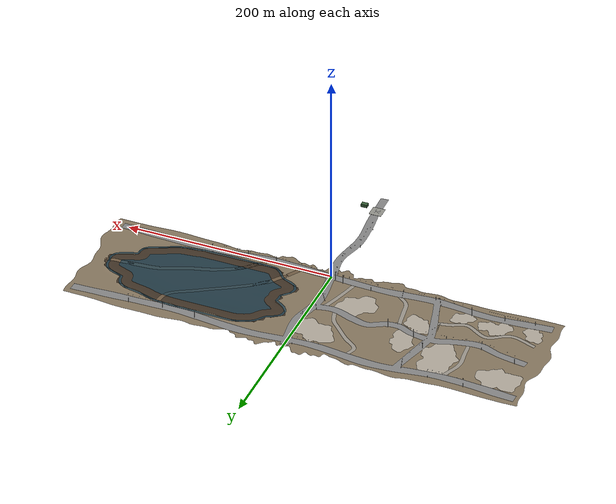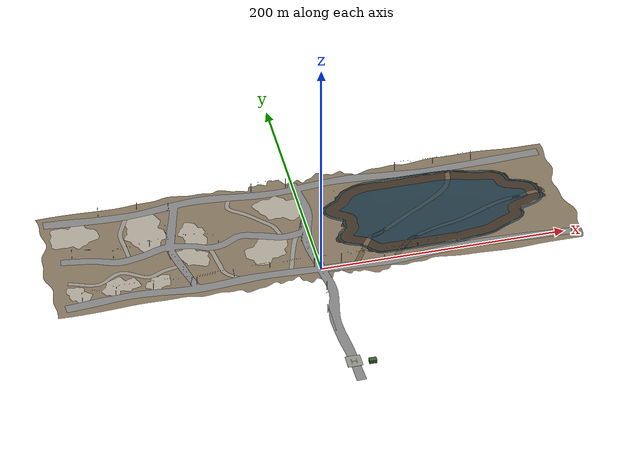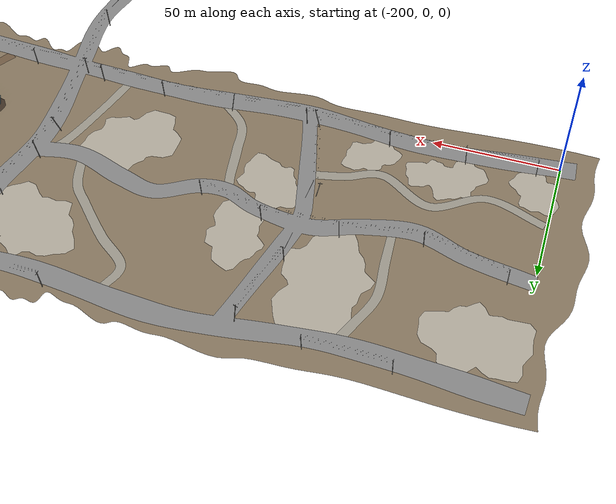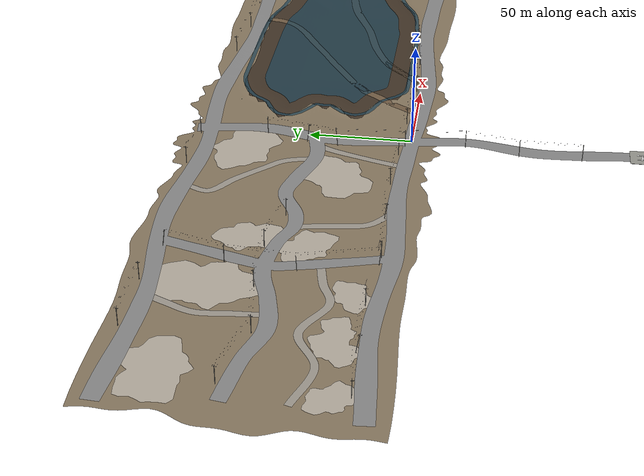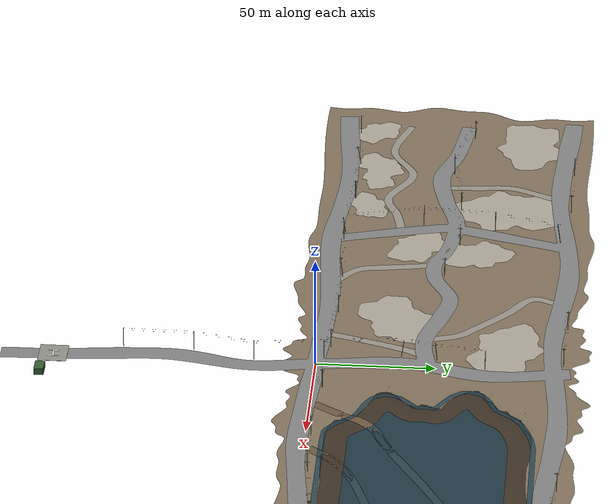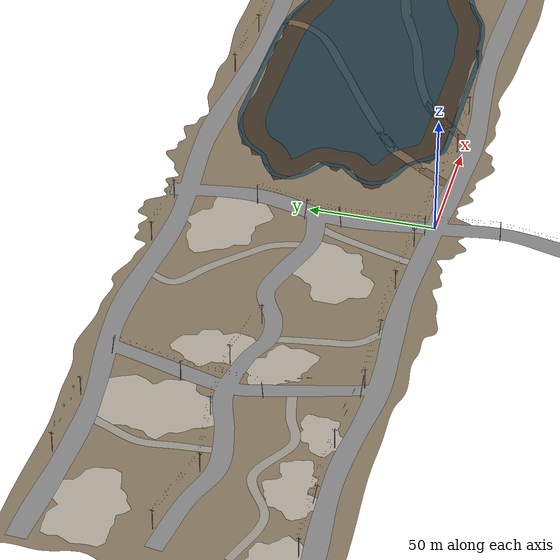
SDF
<sdf version="1.9">
 <world name="aero_sense_disaster">
  <physics name="1ms" type="ignore">
   <max_step_size>0.001</max_step_size>
   <real_time_factor>1.0</real_time_factor>
  </physics>
  <plugin filename="gz-sim-physics-system" name="gz::sim::systems::Physics"/>
  <plugin filename="gz-sim-sensors-system" name="gz::sim::systems::Sensors">
   <render_engine>ogre2</render_engine>
  </plugin>
  <plugin filename="gz-sim-user-commands-system" name="gz::sim::systems::UserCommands"/>
  <plugin filename="gz-sim-scene-broadcaster-system" name="gz::sim::systems::SceneBroadcaster"/>
  <plugin filename="gz-sim-imu-system" name="gz::sim::systems::Imu"/>
  <plugin filename="gz-sim-navsat-system" name="gz::sim::systems::NavSat"/>
  <plugin filename="gz-sim-air-pressure-system" name="gz::sim::systems::AirPressure"/>
  <scene><ambient>0.7 0.7 0.7</ambient><background>0.7 0.75 0.8</background></scene>
  <atmosphere type="adiabatic"><temperature>293</temperature></atmosphere>
  <spherical_coordinates>
   <latitude_deg>-35.363262</latitude_deg>
   <longitude_deg>149.165237</longitude_deg>
   <elevation>584</elevation>
   <heading_deg>0</heading_deg>
   <surface_model>EARTH_WGS84</surface_model>
  </spherical_coordinates>
  <light type="directional" name="sun">
   <pose>0 0 100 0 0 0</pose>
   <diffuse>0.9 0.9 0.85 1</diffuse>
   <specular>0.3 0.3 0.3 1</specular>
   <direction>-0.4 0.2 -0.9</direction>
  </light>
  <frame name="drone_spawn"><pose>0 -110 0.1 0 0 1.5708</pose></frame>
  <include><name>ground</name><pose>0 -20 0 0 0 0</pose><uri>model://aero_sense_ground</uri></include>
  <include><name>roads</name><uri>model://aero_sense_roads</uri></include>
  <include><name>surroundings</name><uri>model://aero_sense_surroundings</uri></include>
  <model name="command_base">
   <static>true</static>
   <pose>0 -110 0 0 0 0</pose>
   <link name="link">
    <collision name="pad_collision">
     <pose>0 0 0.05 0 0 0</pose>
     <geometry><box><size>12 12 0.1</size></box></geometry>
    </collision>
    <visual name="pad">
     <pose>0 0 0.05 0 0 0</pose>
     <geometry><box><size>12 12 0.1</size></box></geometry>
     <material><ambient>0.55 0.55 0.52 1</ambient><diffuse>0.55 0.55 0.52 1</diffuse></material>
     <plugin filename="gz-sim-thermal-system" name="gz::sim::systems::Thermal">
      <temperature>300</temperature>
     </plugin>
    </visual>
    <visual name="h_left">
     <pose>-2 0 0.101 0 0 0</pose>
     <geometry><box><size>0.6 5 0.002</size></box></geometry>
     <material><ambient>1 1 1 1</ambient><diffuse>1 1 1 1</diffuse></material>
    </visual>
    <visual name="h_right">
     <pose>2 0 0.101 0 0 0</pose>
     <geometry><box><size>0.6 5 0.002</size></box></geometry>
     <material><ambient>1 1 1 1</ambient><diffuse>1 1 1 1</diffuse></material>
    </visual>
    <visual name="h_bar">
     <pose>0 0 0.101 0 0 0</pose>
     <geometry><box><size>4 0.6 0.002</size></box></geometry>
     <material><ambient>1 1 1 1</ambient><diffuse>1 1 1 1</diffuse></material>
    </visual>
    <collision name="tent_collision">
     <pose>14 -4 1.5 0 0 0</pose>
     <geometry><box><size>6 4 3</size></box></geometry>
    </collision>
    <visual name="tent">
     <pose>14 -4 1.5 0 0 0</pose>
     <geometry><box><size>6 4 3</size></box></geometry>
     <material><ambient>0.2 0.35 0.2 1</ambient><diffuse>0.2 0.35 0.2 1</diffuse></material>
    </visual>
   </link>
  </model>
  <include>
   <name>pole_1</name>
   <pose>-7.32 -81.24 0.00 0.000 0.000 1.662</pose>
   <uri>model://aero_sense_electric_pole</uri>
  </include>
  <include>
   <name>pole_2</name>
   <pose>-6.98 -51.59 0.00 0.000 0.000 1.386</pose>
   <uri>model://aero_sense_electric_pole</uri>
  </include>
  <include>
   <name>pole_3</name>
   <pose>-1.52 -25.86 0.00 0.000 0.000 1.560</pose>
   <uri>model://aero_sense_electric_pole</uri>
  </include>
  <include>
   <name>pole_4</name>
   <pose>-4.92 3.00 0.00 0.000 0.000 1.680</pose>
   <uri>model://aero_sense_electric_pole</uri>
  </include>
  <include>
   <name>pole_5</name>
   <pose>-8.28 35.26 0.00 0.173 0.133 1.556</pose>
   <uri>model://aero_sense_electric_pole</uri>
  </include>
  <include>
   <name>pole_6</name>
   <pose>-1.21 70.55 0.00 0.000 0.000 1.476</pose>
   <uri>model://aero_sense_electric_pole</uri>
  </include>
  <include>
   <name>pole_7</name>
   <pose>-191.58 5.36 0.00 0.000 0.000 0.092</pose>
   <uri>model://aero_sense_electric_pole</uri>
  </include>
  <include>
   <name>pole_8</name>
   <pose>-164.59 7.18 0.00 0.167 0.038 0.061</pose>
   <uri>model://aero_sense_electric_pole</uri>
  </include>
  <include>
   <name>pole_9</name>
   <pose>-134.40 6.90 0.00 0.000 0.000 -0.096</pose>
   <uri>model://aero_sense_electric_pole</uri>
  </include>
  <include>
   <name>pole_10</name>
   <pose>-99.95 4.21 0.00 0.000 0.000 -0.010</pose>
   <uri>model://aero_sense_electric_pole</uri>
  </include>
  <include>
   <name>pole_11</name>
   <pose>-69.08 6.12 0.00 0.104 -0.154 0.086</pose>
   <uri>model://aero_sense_electric_pole</uri>
  </include>
  <include>
   <name>pole_12</name>
   <pose>-40.25 6.53 0.00 0.000 0.000 -0.021</pose>
   <uri>model://aero_sense_electric_pole</uri>
  </include>
  <include>
   <name>pole_13</name>
   <pose>-13.19 5.36 0.00 0.000 0.000 -0.056</pose>
   <uri>model://aero_sense_electric_pole</uri>
  </include>
  <include>
   <name>pole_14</name>
   <pose>17.34 4.12 0.00 0.000 0.000 -0.072</pose>
   <uri>model://aero_sense_electric_pole</uri>
  </include>
  <include>
   <name>pole_15</name>
   <pose>52.14 2.23 0.00 0.000 0.000 -0.016</pose>
   <uri>model://aero_sense_electric_pole</uri>
  </include>
  <include>
   <name>pole_16</name>
   <pose>79.12 3.00 0.03 0.000 0.000 0.115</pose>
   <uri>model://aero_sense_electric_pole</uri>
  </include>
  <include>
   <name>pole_17</name>
   <pose>112.85 6.36 0.36 0.000 0.000 0.046</pose>
   <uri>model://aero_sense_electric_pole</uri>
  </include>
  <include>
   <name>pole_18</name>
   <pose>-160.93 102.50 0.00 0.000 0.000 -0.060</pose>
   <uri>model://aero_sense_electric_pole</uri>
  </include>
  <include>
   <name>pole_19</name>
   <pose>-129.22 102.08 0.00 0.000 0.000 0.091</pose>
   <uri>model://aero_sense_electric_pole</uri>
  </include>
  <include>
   <name>pole_20</name>
   <pose>-34.27 103.84 0.00 0.000 0.000 -0.097</pose>
   <uri>model://aero_sense_electric_pole</uri>
  </include>
  <include>
   <name>pole_21</name>
   <pose>-5.82 103.05 0.00 0.000 0.000 0.077</pose>
   <uri>model://aero_sense_electric_pole</uri>
  </include>
  <include>
   <name>pole_22</name>
   <pose>85.49 103.35 0.00 0.000 0.000 -0.089</pose>
   <uri>model://aero_sense_electric_pole</uri>
  </include>
  <include>
   <name>pole_23</name>
   <pose>117.00 101.56 0.00 0.000 0.000 0.003</pose>
   <uri>model://aero_sense_electric_pole</uri>
  </include>
  <include>
   <name>pole_24</name>
   <pose>149.58 102.57 0.00 0.000 0.000 0.037</pose>
   <uri>model://aero_sense_electric_pole</uri>
  </include>
  <include>
   <name>pole_25</name>
   <pose>-190.54 56.98 0.00 0.000 0.000 -0.141</pose>
   <uri>model://aero_sense_electric_pole</uri>
  </include>
  <include>
   <name>pole_26</name>
   <pose>-158.42 49.32 0.00 0.000 0.000 -0.269</pose>
   <uri>model://aero_sense_electric_pole</uri>
  </include>
  <include>
   <name>pole_27</name>
   <pose>-128.06 53.97 0.00 0.000 0.000 0.355</pose>
   <uri>model://aero_sense_electric_pole</uri>
  </include>
  <include>
   <name>pole_28</name>
   <pose>-98.48 54.93 0.00 0.000 0.000 -0.194</pose>
   <uri>model://aero_sense_electric_pole</uri>
  </include>
  <include>
   <name>pole_29</name>
   <pose>-73.03 49.66 0.00 0.000 0.000 0.240</pose>
   <uri>model://aero_sense_electric_pole</uri>
  </include>
  <include>
   <name>pole_30</name>
   <pose>-6.71 50.34 0.00 0.125 0.145 0.219</pose>
   <uri>model://aero_sense_electric_pole</uri>
  </include>
  <include>
   <name>pole_31</name>
   <pose>-105.25 4.58 0.00 0.173 -0.137 1.847</pose>
   <uri>model://aero_sense_electric_pole</uri>
  </include>
  <include>
   <name>pole_32</name>
   <pose>-114.32 38.24 0.00 -0.207 0.055 1.798</pose>
   <uri>model://aero_sense_electric_pole</uri>
  </include>
  <include>
   <name>pole_33</name>
   <pose>-112.17 69.64 0.00 0.000 0.000 1.304</pose>
   <uri>model://aero_sense_electric_pole</uri>
  </include>
  <include>
   <name>pole_34</name>
   <pose>-103.78 98.27 0.00 -0.037 -0.170 1.300</pose>
   <uri>model://aero_sense_electric_pole</uri>
  </include>
  <include><name>power_lines</name><uri>model://aero_sense_power_lines</uri></include>
  <include><name>flood_water</name><pose>0 0 0.6 0 0 0</pose><uri>model://aero_sense_flood_water</uri></include>
 </world>
</sdf>

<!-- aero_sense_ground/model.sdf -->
<sdf version="1.9">
  <model name="aero_sense_ground">
    <static>true</static>
    <link name="link">
      <collision name="collision">
        <geometry><plane><normal>0 0 1</normal><size>440 360</size></plane></geometry>
      </collision>
      <visual name="visual">
        <pose>0 20 0 0 0 0</pose>
        <cast_shadows>false</cast_shadows>
        <geometry><mesh><uri>model://aero_sense_ground/meshes/ground.obj</uri></mesh></geometry>
        <material>
          <diffuse>1 1 1 1</diffuse>
          <pbr><metal>
            <albedo_map>model://gazebo_models_worlds_collection-master/models/cyberzoo/cyberzoo_floor/grass_green.png</albedo_map>
            <roughness>0.95</roughness><metalness>0</metalness>
          </metal></pbr>
        </material>
        <plugin filename="gz-sim-thermal-system" name="gz::sim::systems::Thermal">
          <temperature>298</temperature>
        </plugin>
      </visual>
      <visual name="earth">
        <pose>0 20 0 0 0 0</pose>
        <cast_shadows>false</cast_shadows>
        <geometry><mesh><uri>model://aero_sense_ground/meshes/earth.obj</uri></mesh></geometry>
        <material>
          <ambient>0.50 0.44 0.35 1</ambient><diffuse>0.50 0.44 0.35 1</diffuse>
          <pbr><metal><roughness>0.95</roughness><metalness>0</metalness></metal></pbr>
        </material>
        <plugin filename="gz-sim-thermal-system" name="gz::sim::systems::Thermal">
          <temperature>298</temperature>
        </plugin>
      </visual>
      <visual name="dust">
        <pose>0 20 0 0 0 0</pose>
        <cast_shadows>false</cast_shadows>
        <geometry><mesh><uri>model://aero_sense_ground/meshes/dust.obj</uri></mesh></geometry>
        <material>
          <ambient>0.66 0.63 0.58 1</ambient><diffuse>0.66 0.63 0.58 1</diffuse>
          <pbr><metal><roughness>0.95</roughness><metalness>0</metalness></metal></pbr>
        </material>
        <plugin filename="gz-sim-thermal-system" name="gz::sim::systems::Thermal">
          <temperature>298</temperature>
        </plugin>
      </visual>
      <visual name="mud">
        <pose>0 20 0 0 0 0</pose>
        <cast_shadows>false</cast_shadows>
        <geometry><mesh><uri>model://aero_sense_ground/meshes/mud.obj</uri></mesh></geometry>
        <material>
          <ambient>0.24 0.19 0.14 1</ambient><diffuse>0.24 0.19 0.14 1</diffuse>
          <pbr><metal><roughness>0.6</roughness><metalness>0</metalness></metal></pbr>
        </material>
        <plugin filename="gz-sim-thermal-system" name="gz::sim::systems::Thermal">
          <temperature>294</temperature>
        </plugin>
      </visual>
    </link>
  </model>
</sdf>

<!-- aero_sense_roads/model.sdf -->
<sdf version="1.9">
  <model name="aero_sense_roads">
    <static>true</static>
    <link name="link">
      <visual name="visual">
        <cast_shadows>false</cast_shadows>
        <geometry><mesh><uri>model://aero_sense_roads/meshes/roads.obj</uri></mesh></geometry>
        <material>
          <diffuse>0.5 0.5 0.5 1</diffuse>
          <pbr><metal>
            <albedo_map>model://darpa_subt_worlds-main/materials/textures/Asphalt01_Albedo.jpg</albedo_map>
            <normal_map>model://darpa_subt_worlds-main/materials/textures/Asphalt01_Normal.jpg</normal_map>
            <roughness_map>model://darpa_subt_worlds-main/materials/textures/Asphalt01_Roughness.jpg</roughness_map>
            <metalness>0</metalness>
          </metal></pbr>
        </material>
        <plugin filename="gz-sim-thermal-system" name="gz::sim::systems::Thermal">
          <temperature>301</temperature>
        </plugin>
      </visual>
      <!-- Concrete galis, 3-4 m wide: sun-warmed like the asphalt, a touch cooler -->
      <visual name="lanes">
        <cast_shadows>false</cast_shadows>
        <geometry><mesh><uri>model://aero_sense_roads/meshes/lanes.obj</uri></mesh></geometry>
        <material>
          <ambient>0.58 0.56 0.52 1</ambient><diffuse>0.58 0.56 0.52 1</diffuse>
          <pbr><metal><roughness>0.9</roughness><metalness>0</metalness></metal></pbr>
        </material>
        <plugin filename="gz-sim-thermal-system" name="gz::sim::systems::Thermal">
          <temperature>300</temperature>
        </plugin>
      </visual>
      <!-- Village dirt tracks, mostly under the flood -->
      <visual name="tracks">
        <cast_shadows>false</cast_shadows>
        <geometry><mesh><uri>model://aero_sense_roads/meshes/tracks.obj</uri></mesh></geometry>
        <material>
          <ambient>0.42 0.34 0.25 1</ambient><diffuse>0.42 0.34 0.25 1</diffuse>
          <pbr><metal><roughness>0.9</roughness><metalness>0</metalness></metal></pbr>
        </material>
        <plugin filename="gz-sim-thermal-system" name="gz::sim::systems::Thermal">
          <temperature>297</temperature>
        </plugin>
      </visual>
    </link>
  </model>
</sdf>

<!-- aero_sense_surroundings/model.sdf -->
<sdf version="1.9">
  <model name="aero_sense_surroundings">
    <static>true</static>
    <link name="link">
      <visual name="fields">
        <pose>0 0 -2.2 0 0 0</pose>
        <cast_shadows>false</cast_shadows>
        <geometry><plane><normal>0 0 1</normal><size>3000 3000</size></plane></geometry>
        <material><ambient>0.33 0.38 0.2 1</ambient><diffuse>0.33 0.38 0.2 1</diffuse></material>
      </visual>
    </link>
  </model>
</sdf>

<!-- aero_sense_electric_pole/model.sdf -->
<sdf version="1.9">
  <model name="aero_sense_electric_pole">
    <static>true</static>
    <link name="link">
      <collision name="collision">
        <pose>0 0 4.5 0 0 0</pose>
        <geometry><box><size>0.22 0.22 9</size></box></geometry>
      </collision>
      <visual name="pole">
        <pose>0 0 4.5 0 0 0</pose>
        <geometry><box><size>0.2 0.22 9</size></box></geometry>
        <material><ambient>0.66 0.65 0.62 1</ambient><diffuse>0.66 0.65 0.62 1</diffuse></material>
      </visual>
      <visual name="cross_arm">
        <pose>0 0 8.5 0 0 0</pose>
        <geometry><box><size>0.08 1.8 0.08</size></box></geometry>
        <material><ambient>0.3 0.3 0.32 1</ambient><diffuse>0.3 0.3 0.32 1</diffuse></material>
      </visual>
      <visual name="insulator_left">
        <pose>0 -0.8 8.64 0 0 0</pose>
        <geometry><cylinder><radius>0.05</radius><length>0.2</length></cylinder></geometry>
        <material><ambient>0.85 0.85 0.82 1</ambient><diffuse>0.85 0.85 0.82 1</diffuse></material>
      </visual>
      <visual name="insulator_middle">
        <pose>0 0 9.1 0 0 0</pose>
        <geometry><cylinder><radius>0.05</radius><length>0.2</length></cylinder></geometry>
        <material><ambient>0.85 0.85 0.82 1</ambient><diffuse>0.85 0.85 0.82 1</diffuse></material>
      </visual>
      <visual name="insulator_right">
        <pose>0 0.8 8.64 0 0 0</pose>
        <geometry><cylinder><radius>0.05</radius><length>0.2</length></cylinder></geometry>
        <material><ambient>0.85 0.85 0.82 1</ambient><diffuse>0.85 0.85 0.82 1</diffuse></material>
      </visual>
    </link>
  </model>
</sdf>

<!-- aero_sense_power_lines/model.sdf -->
<sdf version="1.9">
  <model name="aero_sense_power_lines">
    <static>true</static>
    <link name="link">
      <visual name="span_0_-0.8">
        <pose>-6.349 -66.424 8.640 0 1.57080 1.55957</pose>
        <cast_shadows>false</cast_shadows>
        <geometry><cylinder><radius>0.006</radius><length>29.654</length></cylinder></geometry>
        <material><ambient>0.08 0.08 0.09 1</ambient><diffuse>0.08 0.08 0.09 1</diffuse></material>
      </visual>
      <visual name="span_0_+0.0">
        <pose>-7.149 -66.415 9.100 0 1.57080 1.55957</pose>
        <cast_shadows>false</cast_shadows>
        <geometry><cylinder><radius>0.006</radius><length>29.654</length></cylinder></geometry>
        <material><ambient>0.08 0.08 0.09 1</ambient><diffuse>0.08 0.08 0.09 1</diffuse></material>
      </visual>
      <visual name="span_0_+0.8">
        <pose>-7.949 -66.406 8.640 0 1.57080 1.55957</pose>
        <cast_shadows>false</cast_shadows>
        <geometry><cylinder><radius>0.006</radius><length>29.654</length></cylinder></geometry>
        <material><ambient>0.08 0.08 0.09 1</ambient><diffuse>0.08 0.08 0.09 1</diffuse></material>
      </visual>
      <visual name="span_1_-0.8">
        <pose>-3.471 -38.891 8.640 0 1.57080 1.36176</pose>
        <cast_shadows>false</cast_shadows>
        <geometry><cylinder><radius>0.006</radius><length>26.300</length></cylinder></geometry>
        <material><ambient>0.08 0.08 0.09 1</ambient><diffuse>0.08 0.08 0.09 1</diffuse></material>
      </visual>
      <visual name="span_1_+0.0">
        <pose>-4.254 -38.725 9.100 0 1.57080 1.36176</pose>
        <cast_shadows>false</cast_shadows>
        <geometry><cylinder><radius>0.006</radius><length>26.300</length></cylinder></geometry>
        <material><ambient>0.08 0.08 0.09 1</ambient><diffuse>0.08 0.08 0.09 1</diffuse></material>
      </visual>
      <visual name="span_1_+0.8">
        <pose>-5.036 -38.559 8.640 0 1.57080 1.36176</pose>
        <cast_shadows>false</cast_shadows>
        <geometry><cylinder><radius>0.006</radius><length>26.300</length></cylinder></geometry>
        <material><ambient>0.08 0.08 0.09 1</ambient><diffuse>0.08 0.08 0.09 1</diffuse></material>
      </visual>
      <visual name="span_2_-0.8">
        <pose>-2.429 -11.336 8.640 0 1.57080 1.68797</pose>
        <cast_shadows>false</cast_shadows>
        <geometry><cylinder><radius>0.006</radius><length>29.063</length></cylinder></geometry>
        <material><ambient>0.08 0.08 0.09 1</ambient><diffuse>0.08 0.08 0.09 1</diffuse></material>
      </visual>
      <visual name="span_2_+0.0">
        <pose>-3.224 -11.429 9.100 0 1.57080 1.68797</pose>
        <cast_shadows>false</cast_shadows>
        <geometry><cylinder><radius>0.006</radius><length>29.063</length></cylinder></geometry>
        <material><ambient>0.08 0.08 0.09 1</ambient><diffuse>0.08 0.08 0.09 1</diffuse></material>
      </visual>
      <visual name="span_2_+0.8">
        <pose>-4.018 -11.523 8.640 0 1.57080 1.68797</pose>
        <cast_shadows>false</cast_shadows>
        <geometry><cylinder><radius>0.006</radius><length>29.063</length></cylinder></geometry>
        <material><ambient>0.08 0.08 0.09 1</ambient><diffuse>0.08 0.08 0.09 1</diffuse></material>
      </visual>
      <visual name="span_3_-0.8">
        <pose>-5.804 19.213 8.640 0 1.57080 1.67442</pose>
        <cast_shadows>false</cast_shadows>
        <geometry><cylinder><radius>0.006</radius><length>32.429</length></cylinder></geometry>
        <material><ambient>0.08 0.08 0.09 1</ambient><diffuse>0.08 0.08 0.09 1</diffuse></material>
      </visual>
      <visual name="span_3_+0.0">
        <pose>-6.600 19.130 9.100 0 1.57080 1.67442</pose>
        <cast_shadows>false</cast_shadows>
        <geometry><cylinder><radius>0.006</radius><length>32.429</length></cylinder></geometry>
        <material><ambient>0.08 0.08 0.09 1</ambient><diffuse>0.08 0.08 0.09 1</diffuse></material>
      </visual>
      <visual name="span_3_+0.8">
        <pose>-7.395 19.047 8.640 0 1.57080 1.67442</pose>
        <cast_shadows>false</cast_shadows>
        <geometry><cylinder><radius>0.006</radius><length>32.429</length></cylinder></geometry>
        <material><ambient>0.08 0.08 0.09 1</ambient><diffuse>0.08 0.08 0.09 1</diffuse></material>
      </visual>
      <visual name="span_4_-0.8">
        <pose>-3.960 52.745 8.640 0 1.57080 1.37322</pose>
        <cast_shadows>false</cast_shadows>
        <geometry><cylinder><radius>0.006</radius><length>35.989</length></cylinder></geometry>
        <material><ambient>0.08 0.08 0.09 1</ambient><diffuse>0.08 0.08 0.09 1</diffuse></material>
      </visual>
      <visual name="span_4_+0.0">
        <pose>-4.744 52.902 9.100 0 1.57080 1.37322</pose>
        <cast_shadows>false</cast_shadows>
        <geometry><cylinder><radius>0.006</radius><length>35.989</length></cylinder></geometry>
        <material><ambient>0.08 0.08 0.09 1</ambient><diffuse>0.08 0.08 0.09 1</diffuse></material>
      </visual>
      <visual name="span_4_+0.8">
        <pose>-5.529 53.059 8.640 0 1.57080 1.37322</pose>
        <cast_shadows>false</cast_shadows>
        <geometry><cylinder><radius>0.006</radius><length>35.989</length></cylinder></geometry>
        <material><ambient>0.08 0.08 0.09 1</ambient><diffuse>0.08 0.08 0.09 1</diffuse></material>
      </visual>
      <visual name="span_5_-0.8">
        <pose>-178.033 5.471 8.640 0 1.57080 0.06730</pose>
        <cast_shadows>false</cast_shadows>
        <geometry><cylinder><radius>0.006</radius><length>27.052</length></cylinder></geometry>
        <material><ambient>0.08 0.08 0.09 1</ambient><diffuse>0.08 0.08 0.09 1</diffuse></material>
      </visual>
      <visual name="span_5_+0.0">
        <pose>-178.087 6.269 9.100 0 1.57080 0.06730</pose>
        <cast_shadows>false</cast_shadows>
        <geometry><cylinder><radius>0.006</radius><length>27.052</length></cylinder></geometry>
        <material><ambient>0.08 0.08 0.09 1</ambient><diffuse>0.08 0.08 0.09 1</diffuse></material>
      </visual>
      <visual name="span_5_+0.8">
        <pose>-178.141 7.067 8.640 0 1.57080 0.06730</pose>
        <cast_shadows>false</cast_shadows>
        <geometry><cylinder><radius>0.006</radius><length>27.052</length></cylinder></geometry>
        <material><ambient>0.08 0.08 0.09 1</ambient><diffuse>0.08 0.08 0.09 1</diffuse></material>
      </visual>
      <visual name="span_6_-0.8">
        <pose>-149.505 6.240 8.640 0 1.57080 -0.00922</pose>
        <cast_shadows>false</cast_shadows>
        <geometry><cylinder><radius>0.006</radius><length>30.189</length></cylinder></geometry>
        <material><ambient>0.08 0.08 0.09 1</ambient><diffuse>0.08 0.08 0.09 1</diffuse></material>
      </visual>
      <visual name="span_6_+0.0">
        <pose>-149.498 7.040 9.100 0 1.57080 -0.00922</pose>
        <cast_shadows>false</cast_shadows>
        <geometry><cylinder><radius>0.006</radius><length>30.189</length></cylinder></geometry>
        <material><ambient>0.08 0.08 0.09 1</ambient><diffuse>0.08 0.08 0.09 1</diffuse></material>
      </visual>
      <visual name="span_6_+0.8">
        <pose>-149.490 7.839 8.640 0 1.57080 -0.00922</pose>
        <cast_shadows>false</cast_shadows>
        <geometry><cylinder><radius>0.006</radius><length>30.189</length></cylinder></geometry>
        <material><ambient>0.08 0.08 0.09 1</ambient><diffuse>0.08 0.08 0.09 1</diffuse></material>
      </visual>
      <visual name="span_7_-0.8">
        <pose>-117.237 4.760 8.640 0 1.57080 -0.07779</pose>
        <cast_shadows>false</cast_shadows>
        <geometry><cylinder><radius>0.006</radius><length>34.562</length></cylinder></geometry>
        <material><ambient>0.08 0.08 0.09 1</ambient><diffuse>0.08 0.08 0.09 1</diffuse></material>
      </visual>
      <visual name="span_7_+0.0">
        <pose>-117.175 5.557 9.100 0 1.57080 -0.07779</pose>
        <cast_shadows>false</cast_shadows>
        <geometry><cylinder><radius>0.006</radius><length>34.562</length></cylinder></geometry>
        <material><ambient>0.08 0.08 0.09 1</ambient><diffuse>0.08 0.08 0.09 1</diffuse></material>
      </visual>
      <visual name="span_7_+0.8">
        <pose>-117.113 6.355 8.640 0 1.57080 -0.07779</pose>
        <cast_shadows>false</cast_shadows>
        <geometry><cylinder><radius>0.006</radius><length>34.562</length></cylinder></geometry>
        <material><ambient>0.08 0.08 0.09 1</ambient><diffuse>0.08 0.08 0.09 1</diffuse></material>
      </visual>
      <visual name="span_8_-0.8">
        <pose>-84.462 4.369 8.640 0 1.57080 0.06167</pose>
        <cast_shadows>false</cast_shadows>
        <geometry><cylinder><radius>0.006</radius><length>30.929</length></cylinder></geometry>
        <material><ambient>0.08 0.08 0.09 1</ambient><diffuse>0.08 0.08 0.09 1</diffuse></material>
      </visual>
      <visual name="span_8_+0.0">
        <pose>-84.511 5.168 9.100 0 1.57080 0.06167</pose>
        <cast_shadows>false</cast_shadows>
        <geometry><cylinder><radius>0.006</radius><length>30.929</length></cylinder></geometry>
        <material><ambient>0.08 0.08 0.09 1</ambient><diffuse>0.08 0.08 0.09 1</diffuse></material>
      </visual>
      <visual name="span_8_+0.8">
        <pose>-84.560 5.966 8.640 0 1.57080 0.06167</pose>
        <cast_shadows>false</cast_shadows>
        <geometry><cylinder><radius>0.006</radius><length>30.929</length></cylinder></geometry>
        <material><ambient>0.08 0.08 0.09 1</ambient><diffuse>0.08 0.08 0.09 1</diffuse></material>
      </visual>
      <visual name="span_9_-0.8">
        <pose>-54.653 5.523 8.640 0 1.57080 0.01406</pose>
        <cast_shadows>false</cast_shadows>
        <geometry><cylinder><radius>0.006</radius><length>28.826</length></cylinder></geometry>
        <material><ambient>0.08 0.08 0.09 1</ambient><diffuse>0.08 0.08 0.09 1</diffuse></material>
      </visual>
      <visual name="span_9_+0.0">
        <pose>-54.665 6.323 9.100 0 1.57080 0.01406</pose>
        <cast_shadows>false</cast_shadows>
        <geometry><cylinder><radius>0.006</radius><length>28.826</length></cylinder></geometry>
        <material><ambient>0.08 0.08 0.09 1</ambient><diffuse>0.08 0.08 0.09 1</diffuse></material>
      </visual>
      <visual name="span_9_+0.8">
        <pose>-54.676 7.123 8.640 0 1.57080 0.01406</pose>
        <cast_shadows>false</cast_shadows>
        <geometry><cylinder><radius>0.006</radius><length>28.826</length></cylinder></geometry>
        <material><ambient>0.08 0.08 0.09 1</ambient><diffuse>0.08 0.08 0.09 1</diffuse></material>
      </visual>
      <visual name="span_10_-0.8">
        <pose>-26.756 5.146 8.640 0 1.57080 -0.04291</pose>
        <cast_shadows>false</cast_shadows>
        <geometry><cylinder><radius>0.006</radius><length>27.089</length></cylinder></geometry>
        <material><ambient>0.08 0.08 0.09 1</ambient><diffuse>0.08 0.08 0.09 1</diffuse></material>
      </visual>
      <visual name="span_10_+0.0">
        <pose>-26.721 5.945 9.100 0 1.57080 -0.04291</pose>
        <cast_shadows>false</cast_shadows>
        <geometry><cylinder><radius>0.006</radius><length>27.089</length></cylinder></geometry>
        <material><ambient>0.08 0.08 0.09 1</ambient><diffuse>0.08 0.08 0.09 1</diffuse></material>
      </visual>
      <visual name="span_10_+0.8">
        <pose>-26.687 6.744 8.640 0 1.57080 -0.04291</pose>
        <cast_shadows>false</cast_shadows>
        <geometry><cylinder><radius>0.006</radius><length>27.089</length></cylinder></geometry>
        <material><ambient>0.08 0.08 0.09 1</ambient><diffuse>0.08 0.08 0.09 1</diffuse></material>
      </visual>
      <visual name="span_11_-0.8">
        <pose>2.044 3.943 8.640 0 1.57080 -0.04069</pose>
        <cast_shadows>false</cast_shadows>
        <geometry><cylinder><radius>0.006</radius><length>30.558</length></cylinder></geometry>
        <material><ambient>0.08 0.08 0.09 1</ambient><diffuse>0.08 0.08 0.09 1</diffuse></material>
      </visual>
      <visual name="span_11_+0.0">
        <pose>2.077 4.742 9.100 0 1.57080 -0.04069</pose>
        <cast_shadows>false</cast_shadows>
        <geometry><cylinder><radius>0.006</radius><length>30.558</length></cylinder></geometry>
        <material><ambient>0.08 0.08 0.09 1</ambient><diffuse>0.08 0.08 0.09 1</diffuse></material>
      </visual>
      <visual name="span_11_+0.8">
        <pose>2.109 5.542 8.640 0 1.57080 -0.04069</pose>
        <cast_shadows>false</cast_shadows>
        <geometry><cylinder><radius>0.006</radius><length>30.558</length></cylinder></geometry>
        <material><ambient>0.08 0.08 0.09 1</ambient><diffuse>0.08 0.08 0.09 1</diffuse></material>
      </visual>
      <visual name="span_12_-0.8">
        <pose>34.699 2.375 8.640 0 1.57080 -0.05439</pose>
        <cast_shadows>false</cast_shadows>
        <geometry><cylinder><radius>0.006</radius><length>34.850</length></cylinder></geometry>
        <material><ambient>0.08 0.08 0.09 1</ambient><diffuse>0.08 0.08 0.09 1</diffuse></material>
      </visual>
      <visual name="span_12_+0.0">
        <pose>34.742 3.174 9.100 0 1.57080 -0.05439</pose>
        <cast_shadows>false</cast_shadows>
        <geometry><cylinder><radius>0.006</radius><length>34.850</length></cylinder></geometry>
        <material><ambient>0.08 0.08 0.09 1</ambient><diffuse>0.08 0.08 0.09 1</diffuse></material>
      </visual>
      <visual name="span_12_+0.8">
        <pose>34.786 3.973 8.640 0 1.57080 -0.05439</pose>
        <cast_shadows>false</cast_shadows>
        <geometry><cylinder><radius>0.006</radius><length>34.850</length></cylinder></geometry>
        <material><ambient>0.08 0.08 0.09 1</ambient><diffuse>0.08 0.08 0.09 1</diffuse></material>
      </visual>
      <visual name="span_13_-0.8">
        <pose>65.654 1.815 8.653 0 1.56986 0.02874</pose>
        <cast_shadows>false</cast_shadows>
        <geometry><cylinder><radius>0.006</radius><length>26.989</length></cylinder></geometry>
        <material><ambient>0.08 0.08 0.09 1</ambient><diffuse>0.08 0.08 0.09 1</diffuse></material>
      </visual>
      <visual name="span_13_+0.0">
        <pose>65.631 2.614 9.113 0 1.56986 0.02874</pose>
        <cast_shadows>false</cast_shadows>
        <geometry><cylinder><radius>0.006</radius><length>26.989</length></cylinder></geometry>
        <material><ambient>0.08 0.08 0.09 1</ambient><diffuse>0.08 0.08 0.09 1</diffuse></material>
      </visual>
      <visual name="span_13_+0.8">
        <pose>65.608 3.414 8.653 0 1.56986 0.02874</pose>
        <cast_shadows>false</cast_shadows>
        <geometry><cylinder><radius>0.006</radius><length>26.989</length></cylinder></geometry>
        <material><ambient>0.08 0.08 0.09 1</ambient><diffuse>0.08 0.08 0.09 1</diffuse></material>
      </visual>
      <visual name="span_14_-0.8">
        <pose>96.064 3.884 8.835 0 1.56081 0.09915</pose>
        <cast_shadows>false</cast_shadows>
        <geometry><cylinder><radius>0.006</radius><length>33.898</length></cylinder></geometry>
        <material><ambient>0.08 0.08 0.09 1</ambient><diffuse>0.08 0.08 0.09 1</diffuse></material>
      </visual>
      <visual name="span_14_+0.0">
        <pose>95.985 4.680 9.295 0 1.56081 0.09915</pose>
        <cast_shadows>false</cast_shadows>
        <geometry><cylinder><radius>0.006</radius><length>33.898</length></cylinder></geometry>
        <material><ambient>0.08 0.08 0.09 1</ambient><diffuse>0.08 0.08 0.09 1</diffuse></material>
      </visual>
      <visual name="span_14_+0.8">
        <pose>95.906 5.476 8.835 0 1.56081 0.09915</pose>
        <cast_shadows>false</cast_shadows>
        <geometry><cylinder><radius>0.006</radius><length>33.898</length></cylinder></geometry>
        <material><ambient>0.08 0.08 0.09 1</ambient><diffuse>0.08 0.08 0.09 1</diffuse></material>
      </visual>
      <visual name="span_15_-0.8">
        <pose>-145.088 101.486 8.640 0 1.57080 -0.01320</pose>
        <cast_shadows>false</cast_shadows>
        <geometry><cylinder><radius>0.006</radius><length>31.713</length></cylinder></geometry>
        <material><ambient>0.08 0.08 0.09 1</ambient><diffuse>0.08 0.08 0.09 1</diffuse></material>
      </visual>
      <visual name="span_15_+0.0">
        <pose>-145.077 102.286 9.100 0 1.57080 -0.01320</pose>
        <cast_shadows>false</cast_shadows>
        <geometry><cylinder><radius>0.006</radius><length>31.713</length></cylinder></geometry>
        <material><ambient>0.08 0.08 0.09 1</ambient><diffuse>0.08 0.08 0.09 1</diffuse></material>
      </visual>
      <visual name="span_15_+0.8">
        <pose>-145.067 103.086 8.640 0 1.57080 -0.01320</pose>
        <cast_shadows>false</cast_shadows>
        <geometry><cylinder><radius>0.006</radius><length>31.713</length></cylinder></geometry>
        <material><ambient>0.08 0.08 0.09 1</ambient><diffuse>0.08 0.08 0.09 1</diffuse></material>
      </visual>
      <visual name="span_16_-0.8">
        <pose>-20.067 102.645 8.640 0 1.57080 -0.02805</pose>
        <cast_shadows>false</cast_shadows>
        <geometry><cylinder><radius>0.006</radius><length>28.462</length></cylinder></geometry>
        <material><ambient>0.08 0.08 0.09 1</ambient><diffuse>0.08 0.08 0.09 1</diffuse></material>
      </visual>
      <visual name="span_16_+0.0">
        <pose>-20.045 103.445 9.100 0 1.57080 -0.02805</pose>
        <cast_shadows>false</cast_shadows>
        <geometry><cylinder><radius>0.006</radius><length>28.462</length></cylinder></geometry>
        <material><ambient>0.08 0.08 0.09 1</ambient><diffuse>0.08 0.08 0.09 1</diffuse></material>
      </visual>
      <visual name="span_16_+0.8">
        <pose>-20.022 104.244 8.640 0 1.57080 -0.02805</pose>
        <cast_shadows>false</cast_shadows>
        <geometry><cylinder><radius>0.006</radius><length>28.462</length></cylinder></geometry>
        <material><ambient>0.08 0.08 0.09 1</ambient><diffuse>0.08 0.08 0.09 1</diffuse></material>
      </visual>
      <visual name="span_17_-0.8">
        <pose>101.201 101.658 8.640 0 1.57080 -0.05690</pose>
        <cast_shadows>false</cast_shadows>
        <geometry><cylinder><radius>0.006</radius><length>31.562</length></cylinder></geometry>
        <material><ambient>0.08 0.08 0.09 1</ambient><diffuse>0.08 0.08 0.09 1</diffuse></material>
      </visual>
      <visual name="span_17_+0.0">
        <pose>101.247 102.457 9.100 0 1.57080 -0.05690</pose>
        <cast_shadows>false</cast_shadows>
        <geometry><cylinder><radius>0.006</radius><length>31.562</length></cylinder></geometry>
        <material><ambient>0.08 0.08 0.09 1</ambient><diffuse>0.08 0.08 0.09 1</diffuse></material>
      </visual>
      <visual name="span_17_+0.8">
        <pose>101.292 103.255 8.640 0 1.57080 -0.05690</pose>
        <cast_shadows>false</cast_shadows>
        <geometry><cylinder><radius>0.006</radius><length>31.562</length></cylinder></geometry>
        <material><ambient>0.08 0.08 0.09 1</ambient><diffuse>0.08 0.08 0.09 1</diffuse></material>
      </visual>
      <visual name="span_18_-0.8">
        <pose>133.314 101.263 8.640 0 1.57080 0.03088</pose>
        <cast_shadows>false</cast_shadows>
        <geometry><cylinder><radius>0.006</radius><length>32.590</length></cylinder></geometry>
        <material><ambient>0.08 0.08 0.09 1</ambient><diffuse>0.08 0.08 0.09 1</diffuse></material>
      </visual>
      <visual name="span_18_+0.0">
        <pose>133.290 102.062 9.100 0 1.57080 0.03088</pose>
        <cast_shadows>false</cast_shadows>
        <geometry><cylinder><radius>0.006</radius><length>32.590</length></cylinder></geometry>
        <material><ambient>0.08 0.08 0.09 1</ambient><diffuse>0.08 0.08 0.09 1</diffuse></material>
      </visual>
      <visual name="span_18_+0.8">
        <pose>133.265 102.862 8.640 0 1.57080 0.03088</pose>
        <cast_shadows>false</cast_shadows>
        <geometry><cylinder><radius>0.006</radius><length>32.590</length></cylinder></geometry>
        <material><ambient>0.08 0.08 0.09 1</ambient><diffuse>0.08 0.08 0.09 1</diffuse></material>
      </visual>
      <visual name="span_19_-0.8">
        <pose>-174.666 52.374 8.640 0 1.57080 -0.23424</pose>
        <cast_shadows>false</cast_shadows>
        <geometry><cylinder><radius>0.006</radius><length>33.023</length></cylinder></geometry>
        <material><ambient>0.08 0.08 0.09 1</ambient><diffuse>0.08 0.08 0.09 1</diffuse></material>
      </visual>
      <visual name="span_19_+0.0">
        <pose>-174.480 53.152 9.100 0 1.57080 -0.23424</pose>
        <cast_shadows>false</cast_shadows>
        <geometry><cylinder><radius>0.006</radius><length>33.023</length></cylinder></geometry>
        <material><ambient>0.08 0.08 0.09 1</ambient><diffuse>0.08 0.08 0.09 1</diffuse></material>
      </visual>
      <visual name="span_19_+0.8">
        <pose>-174.295 53.930 8.640 0 1.57080 -0.23424</pose>
        <cast_shadows>false</cast_shadows>
        <geometry><cylinder><radius>0.006</radius><length>33.023</length></cylinder></geometry>
        <material><ambient>0.08 0.08 0.09 1</ambient><diffuse>0.08 0.08 0.09 1</diffuse></material>
      </visual>
      <visual name="span_20_-0.8">
        <pose>-143.117 50.855 8.640 0 1.57080 0.15204</pose>
        <cast_shadows>false</cast_shadows>
        <geometry><cylinder><radius>0.006</radius><length>30.716</length></cylinder></geometry>
        <material><ambient>0.08 0.08 0.09 1</ambient><diffuse>0.08 0.08 0.09 1</diffuse></material>
      </visual>
      <visual name="span_20_+0.0">
        <pose>-143.238 51.645 9.100 0 1.57080 0.15204</pose>
        <cast_shadows>false</cast_shadows>
        <geometry><cylinder><radius>0.006</radius><length>30.716</length></cylinder></geometry>
        <material><ambient>0.08 0.08 0.09 1</ambient><diffuse>0.08 0.08 0.09 1</diffuse></material>
      </visual>
      <visual name="span_20_+0.8">
        <pose>-143.360 52.436 8.640 0 1.57080 0.15204</pose>
        <cast_shadows>false</cast_shadows>
        <geometry><cylinder><radius>0.006</radius><length>30.716</length></cylinder></geometry>
        <material><ambient>0.08 0.08 0.09 1</ambient><diffuse>0.08 0.08 0.09 1</diffuse></material>
      </visual>
      <visual name="span_21_-0.8">
        <pose>-113.241 53.649 8.640 0 1.57080 0.03228</pose>
        <cast_shadows>false</cast_shadows>
        <geometry><cylinder><radius>0.006</radius><length>29.597</length></cylinder></geometry>
        <material><ambient>0.08 0.08 0.09 1</ambient><diffuse>0.08 0.08 0.09 1</diffuse></material>
      </visual>
      <visual name="span_21_+0.0">
        <pose>-113.267 54.449 9.100 0 1.57080 0.03228</pose>
        <cast_shadows>false</cast_shadows>
        <geometry><cylinder><radius>0.006</radius><length>29.597</length></cylinder></geometry>
        <material><ambient>0.08 0.08 0.09 1</ambient><diffuse>0.08 0.08 0.09 1</diffuse></material>
      </visual>
      <visual name="span_21_+0.8">
        <pose>-113.293 55.249 8.640 0 1.57080 0.03228</pose>
        <cast_shadows>false</cast_shadows>
        <geometry><cylinder><radius>0.006</radius><length>29.597</length></cylinder></geometry>
        <material><ambient>0.08 0.08 0.09 1</ambient><diffuse>0.08 0.08 0.09 1</diffuse></material>
      </visual>
      <visual name="span_22_-0.8">
        <pose>-85.915 51.508 8.640 0 1.57080 -0.20424</pose>
        <cast_shadows>false</cast_shadows>
        <geometry><cylinder><radius>0.006</radius><length>25.987</length></cylinder></geometry>
        <material><ambient>0.08 0.08 0.09 1</ambient><diffuse>0.08 0.08 0.09 1</diffuse></material>
      </visual>
      <visual name="span_22_+0.0">
        <pose>-85.753 52.291 9.100 0 1.57080 -0.20424</pose>
        <cast_shadows>false</cast_shadows>
        <geometry><cylinder><radius>0.006</radius><length>25.987</length></cylinder></geometry>
        <material><ambient>0.08 0.08 0.09 1</ambient><diffuse>0.08 0.08 0.09 1</diffuse></material>
      </visual>
      <visual name="span_22_+0.8">
        <pose>-85.590 53.074 8.640 0 1.57080 -0.20424</pose>
        <cast_shadows>false</cast_shadows>
        <geometry><cylinder><radius>0.006</radius><length>25.987</length></cylinder></geometry>
        <material><ambient>0.08 0.08 0.09 1</ambient><diffuse>0.08 0.08 0.09 1</diffuse></material>
      </visual>
      <visual name="span_23_-0.8">
        <pose>-109.015 21.618 8.640 0 1.57080 1.83393</pose>
        <cast_shadows>false</cast_shadows>
        <geometry><cylinder><radius>0.006</radius><length>34.868</length></cylinder></geometry>
        <material><ambient>0.08 0.08 0.09 1</ambient><diffuse>0.08 0.08 0.09 1</diffuse></material>
      </visual>
      <visual name="span_23_+0.0">
        <pose>-109.787 21.410 9.100 0 1.57080 1.83393</pose>
        <cast_shadows>false</cast_shadows>
        <geometry><cylinder><radius>0.006</radius><length>34.868</length></cylinder></geometry>
        <material><ambient>0.08 0.08 0.09 1</ambient><diffuse>0.08 0.08 0.09 1</diffuse></material>
      </visual>
      <visual name="span_23_+0.8">
        <pose>-110.560 21.202 8.640 0 1.57080 1.83393</pose>
        <cast_shadows>false</cast_shadows>
        <geometry><cylinder><radius>0.006</radius><length>34.868</length></cylinder></geometry>
        <material><ambient>0.08 0.08 0.09 1</ambient><diffuse>0.08 0.08 0.09 1</diffuse></material>
      </visual>
      <visual name="span_24_-0.8">
        <pose>-112.447 53.887 8.640 0 1.57080 1.50233</pose>
        <cast_shadows>false</cast_shadows>
        <geometry><cylinder><radius>0.006</radius><length>31.470</length></cylinder></geometry>
        <material><ambient>0.08 0.08 0.09 1</ambient><diffuse>0.08 0.08 0.09 1</diffuse></material>
      </visual>
      <visual name="span_24_+0.0">
        <pose>-113.245 53.942 9.100 0 1.57080 1.50233</pose>
        <cast_shadows>false</cast_shadows>
        <geometry><cylinder><radius>0.006</radius><length>31.470</length></cylinder></geometry>
        <material><ambient>0.08 0.08 0.09 1</ambient><diffuse>0.08 0.08 0.09 1</diffuse></material>
      </visual>
      <visual name="span_24_+0.8">
        <pose>-114.044 53.997 8.640 0 1.57080 1.50233</pose>
        <cast_shadows>false</cast_shadows>
        <geometry><cylinder><radius>0.006</radius><length>31.470</length></cylinder></geometry>
        <material><ambient>0.08 0.08 0.09 1</ambient><diffuse>0.08 0.08 0.09 1</diffuse></material>
      </visual>
      <visual name="span_25_-0.8">
        <pose>-107.208 83.729 8.640 0 1.57080 1.28582</pose>
        <cast_shadows>false</cast_shadows>
        <geometry><cylinder><radius>0.006</radius><length>29.830</length></cylinder></geometry>
        <material><ambient>0.08 0.08 0.09 1</ambient><diffuse>0.08 0.08 0.09 1</diffuse></material>
      </visual>
      <visual name="span_25_+0.0">
        <pose>-107.976 83.954 9.100 0 1.57080 1.28582</pose>
        <cast_shadows>false</cast_shadows>
        <geometry><cylinder><radius>0.006</radius><length>29.830</length></cylinder></geometry>
        <material><ambient>0.08 0.08 0.09 1</ambient><diffuse>0.08 0.08 0.09 1</diffuse></material>
      </visual>
      <visual name="span_25_+0.8">
        <pose>-108.743 84.178 8.640 0 1.57080 1.28582</pose>
        <cast_shadows>false</cast_shadows>
        <geometry><cylinder><radius>0.006</radius><length>29.830</length></cylinder></geometry>
        <material><ambient>0.08 0.08 0.09 1</ambient><diffuse>0.08 0.08 0.09 1</diffuse></material>
      </visual>
    </link>
  </model>
</sdf>

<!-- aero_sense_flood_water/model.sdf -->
<sdf version="1.9">
  <model name="aero_sense_flood_water">
    <static>true</static>
    <link name="link">
      <visual name="visual">
        <cast_shadows>false</cast_shadows>
        <transparency>0.25</transparency>
        <geometry><mesh><uri>model://aero_sense_flood_water/meshes/water.obj</uri></mesh></geometry>
        <material>
          <ambient>0.10 0.20 0.26 1</ambient>
          <diffuse>0.13 0.27 0.34 1</diffuse>
          <specular>0.5 0.55 0.6 1</specular>
          <pbr><metal><roughness>0.15</roughness><metalness>0</metalness></metal></pbr>
        </material>
        <plugin filename="gz-sim-thermal-system" name="gz::sim::systems::Thermal">
          <temperature>291</temperature>
        </plugin>
      </visual>
    </link>
  </model>
</sdf>
